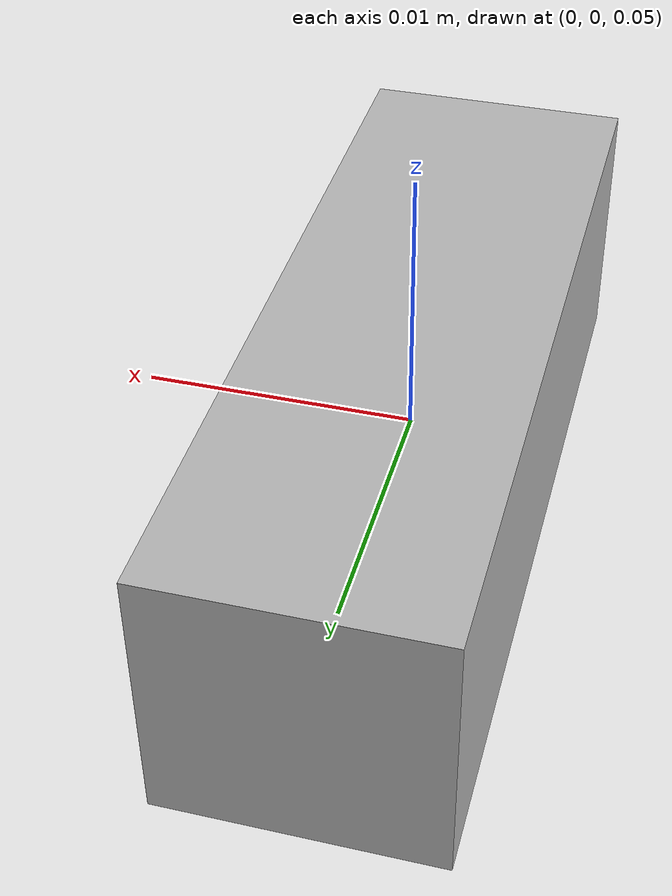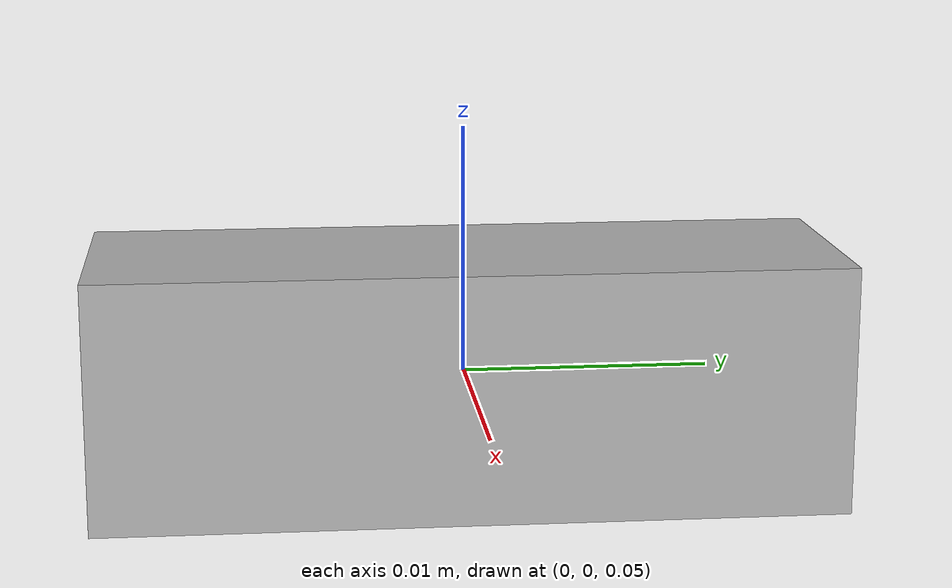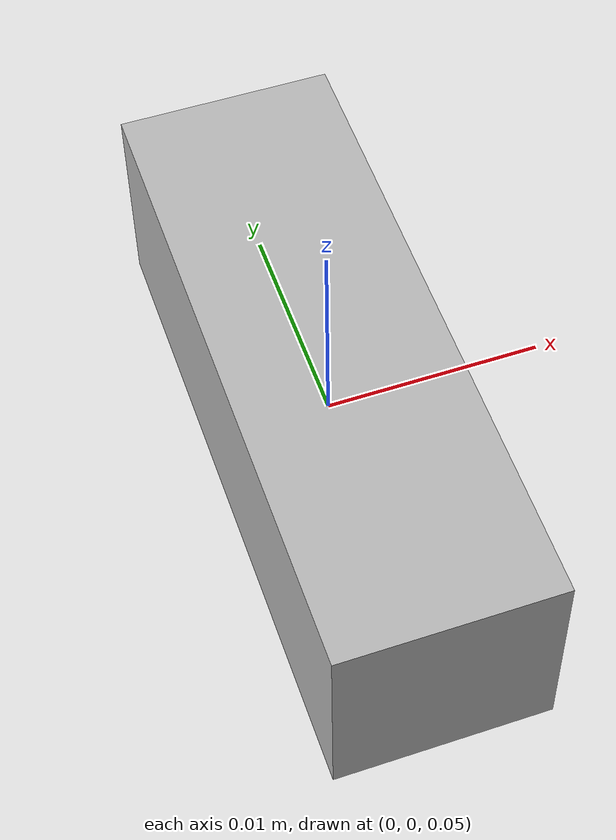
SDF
<?xml version="1.0" ?>
<sdf version="1.6">
  <model name="kobra_camera">
    <pose>0 0 0.05 0 0 0</pose>
    <link name="link">
      <inertial>
        <mass>0.1</mass>
        <inertia>
          <ixx>0.000166667</ixx>
          <iyy>0.000166667</iyy>
          <izz>0.000166667</izz>
        </inertia>
      </inertial>
      <collision name="collision">
        <geometry>
          <box>
            <size>0.01 0.03 0.01</size>
          </box>
        </geometry>
      </collision>
      <visual name="visual">
        <geometry>
          <box>
            <size>0.01 0.03 0.01</size>
          </box>
        </geometry>
      </visual>
      <sensor name="camera" type="camera">
        <camera>
          <horizontal_fov>1.047</horizontal_fov>
          <image>
            <width>320</width>
            <height>240</height>
          </image>
          <clip>
            <near>0.1</near>
            <far>100</far>
          </clip>
        </camera>
        <always_on>1</always_on>
        <update_rate>30</update_rate>
        <visualize>true</visualize>
      </sensor>
    </link>
  </model>
</sdf>
